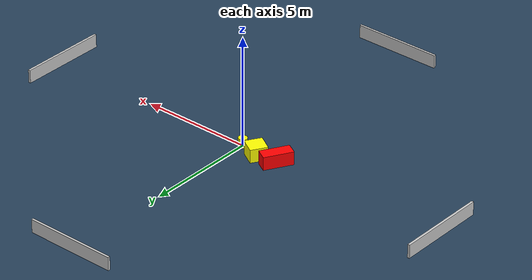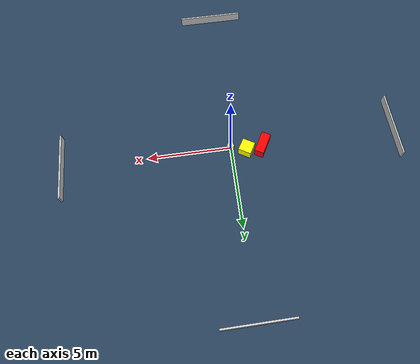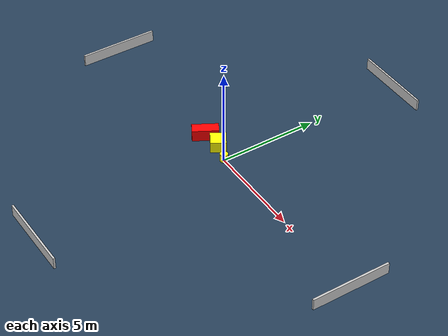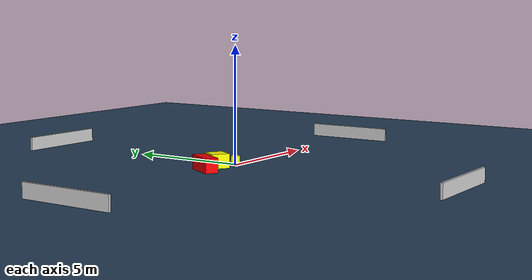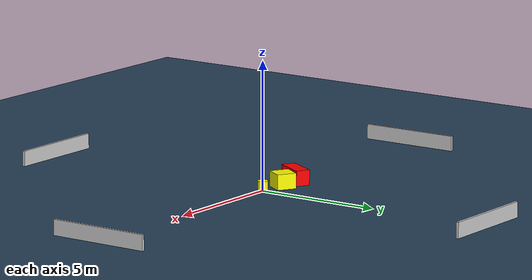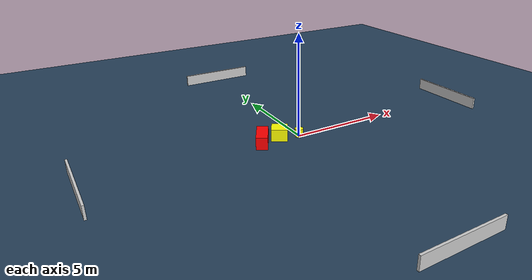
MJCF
<?xml version="1.0" ?>
<mujoco model="generated_environment">
  <option timestep="0.01" integrator="RK4" cone="elliptic"/>
  <default>
    <geom density="1"/>
  </default>
  <asset>
    <texture builtin="gradient" height="3072" name="skybox" rgb1="0.3 0.5 0.7" rgb2="0 0 0" type="skybox" width="512"/>
    <texture builtin="checker" height="300" name="groundplane" rgb1="0.2 0.3 0.4" rgb2="0.1 0.2 0.3" type="2d" width="300"/>
    <material name="groundplane" reflectance="0.2" texrepeat="5 5" texture="groundplane"/>
  </asset>
  <worldbody>
    <light dir="0 0 -1" directional="true" pos="0 0 1.5"/>
    <geom condim="3" friction="0.5 0.005 0.001" material="groundplane" name="floor" pos="0 0 0" size="0 0 0.05" type="plane"/>
    <body name="walls">
      <geom name="wall_1" condim="4" pos="-10.0 0.0 0.3" rgba="0.800000011920929 0.800000011920929 0.800000011920929 1.0" size="0.05 2.0 0.3" type="box"/>
      <geom name="wall_2" condim="4" pos="10.0 0.0 0.3" rgba="0.800000011920929 0.800000011920929 0.800000011920929 1.0" size="0.05 2.0 0.3" type="box"/>
      <geom name="wall_3" condim="4" pos="0.0 -10.0 0.3" rgba="0.800000011920929 0.800000011920929 0.800000011920929 1.0" size="2.0 0.05 0.3" type="box"/>
      <geom name="wall_4" condim="4" pos="0.0 10.0 0.3" rgba="0.800000011920929 0.800000011920929 0.800000011920929 1.0" size="2.0 0.05 0.3" type="box"/>
    </body>
    <body name="robot">
      <joint name="joint_x" type="slide" pos="0 0 0" axis="1 0 0"/>
      <joint name="joint_y" type="slide" pos="0 0 0" axis="0 1 0"/>
      <geom name="robot" type="cylinder" pos="0.0 0.0 0.2" size="0.2 0.2 0.0" mass="5.0" friction="1.0 0.005 0.0001" condim="4" rgba="1.0 1.0 0.0 1.0"/>
    </body>
    <body name="obstacle_1_movable">
      <geom name="obstacle_1_movable" condim="4" pos="-0.9274062844142662 0.26819531698340277 0.3" euler="0 0 239.11957901924637" friction="0.0 0.005 0.001" rgba="1.0 1.0 0.0 1.0" size="0.3841676033242214 0.3831962660340067 0.3" type="box" mass="0.1"/>
      <joint type="free"/>
    </body>
    <body name="obstacle_2_static">
      <geom name="obstacle_2_static" condim="4" pos="-1.9008246007600615 0.16319042415668042 0.3" euler="0 0 150.54355960457588" friction="0.0 0.005 0.001" rgba="1.0 0.0 0.0 1.0" size="0.27311891440292035 0.6558048560198555 0.3" type="box"/>
    </body>
  </worldbody>
  <actuator>
    <motor name="actuator_x" joint="joint_x" gear="1" ctrlrange="-1 1"/>
    <motor name="actuator_y" joint="joint_y" gear="1" ctrlrange="-1 1"/>
  </actuator>
</mujoco>
